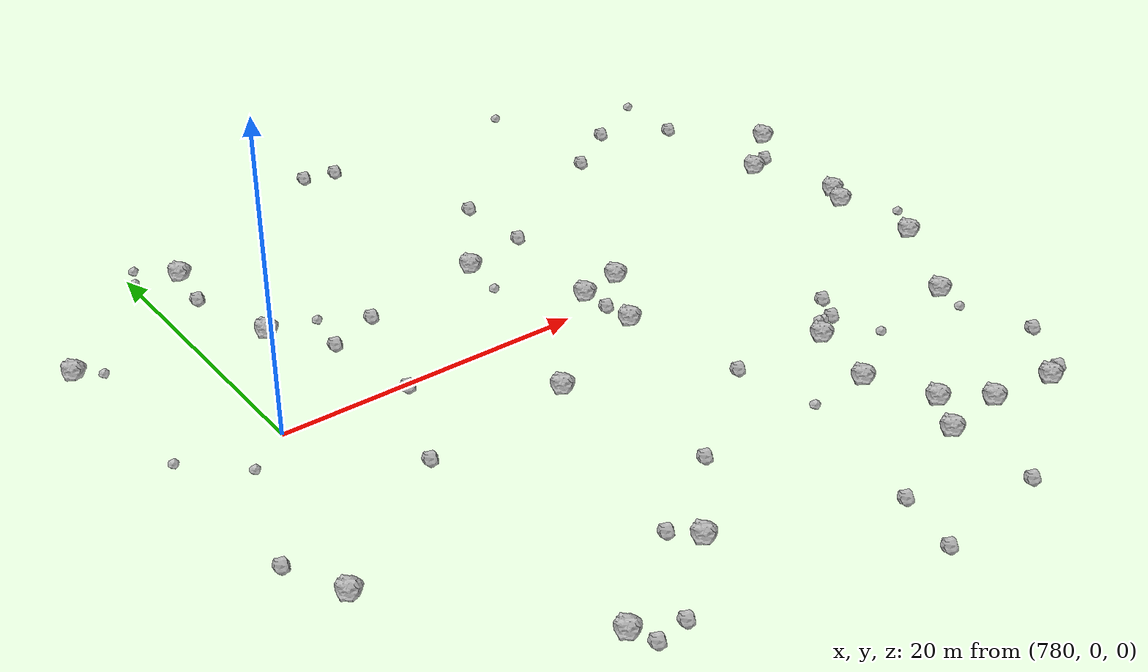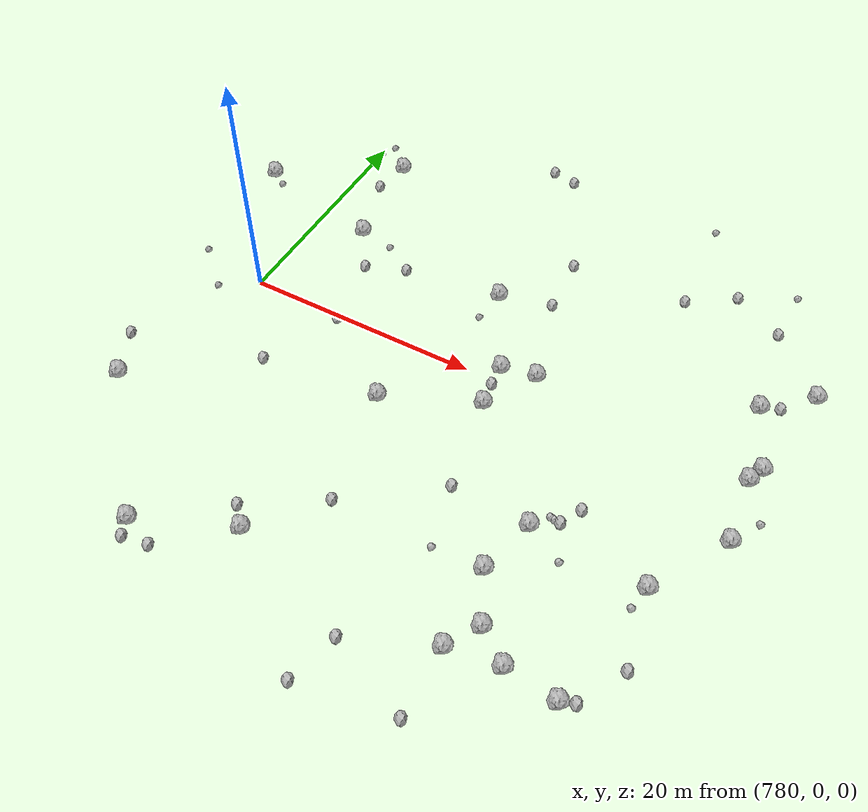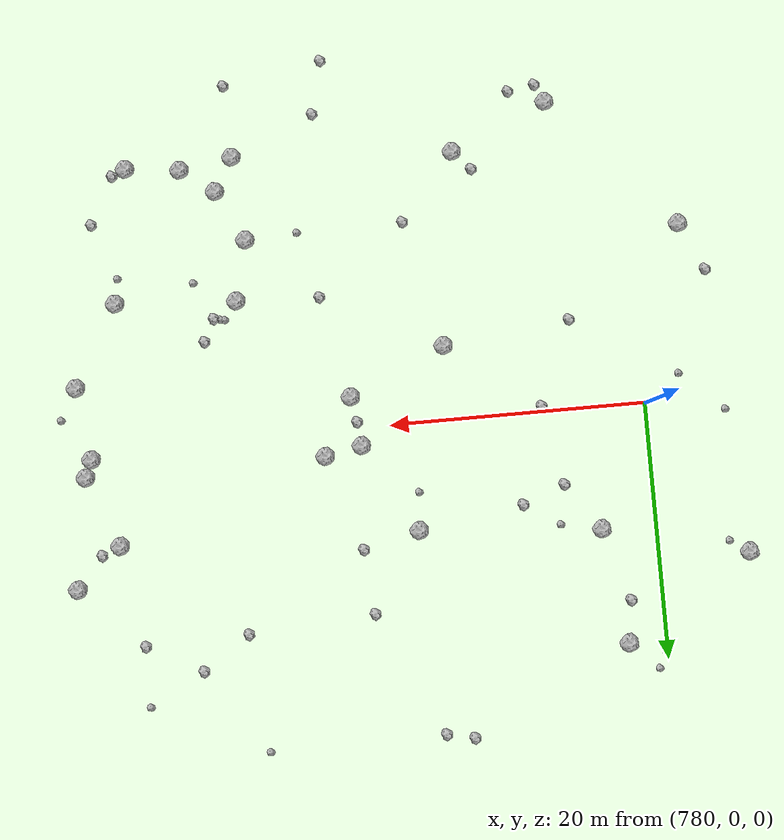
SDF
<sdf version="1.6">
 <world name="default">
  <include><uri>model://sun</uri></include>
  <model name="rock1_20_4">
   <include><uri>model://rock1</uri><pose>784.3052182169229 9.467289953736547 0.5 0 0 0</pose></include>
  </model>
  <model name="rock1_20_5">
   <include><uri>model://rock1</uri><pose>810.588748949477 -22.129869871737164 0.5 0 0 0</pose></include>
  </model>
  <model name="rock1_20_6">
   <include><uri>model://rock1</uri><pose>776.1507093755408 -13.852888620707038 0.5 0 0 0</pose></include>
  </model>
  <model name="rock1_20_7">
   <include><uri>model://rock1</uri><pose>823.4798243244823 0.5976586308515266 0.5 0 0 0</pose></include>
  </model>
  <model name="rock1_20_8">
   <include><uri>model://rock1</uri><pose>802.9013522329752 -2.5150596071014704 0.5 0 0 0</pose></include>
  </model>
  <model name="rock1_20_9">
   <include><uri>model://rock1</uri><pose>798.4806709004987 8.334273597344172 0.5 0 0 0</pose></include>
  </model>
  <model name="rock1_20_10">
   <include><uri>model://rock1</uri><pose>785.6932386244816 -24.349995489196818 0.5 0 0 0</pose></include>
  </model>
  <model name="rock1_20_11">
   <include><uri>model://rock1</uri><pose>805.2675124464951 1.9438262979342475 0.5 0 0 0</pose></include>
  </model>
  <model name="rock1_20_12">
   <include><uri>model://rock1</uri><pose>783.0045633660287 18.464682065296095 0.5 0 0 0</pose></include>
  </model>
  <model name="rock1_20_13">
   <include><uri>model://rock1</uri><pose>811.1751845977946 -10.796912418477522 0.5 0 0 0</pose></include>
  </model>
  <model name="rock1_20_14">
   <include><uri>model://rock1</uri><pose>825.3277606345067 10.589214560853932 0.5 0 0 0</pose></include>
  </model>
  <model name="rock1_20_15">
   <include><uri>model://rock1</uri><pose>821.7812291914529 7.501977702977015 0.5 0 0 0</pose></include>
  </model>
  <model name="rock1_20_16">
   <include><uri>model://rock1</uri><pose>818.9973366894653 -21.90865686054377 0.5 0 0 0</pose></include>
  </model>
  <model name="rock1_20_17">
   <include><uri>model://rock1</uri><pose>814.7410160796896 -21.461148429708985 0.5 0 0 0</pose></include>
  </model>
  <model name="rock1_20_18">
   <include><uri>model://rock1</uri><pose>820.6479559730027 -11.405347873802334 0.5 0 0 0</pose></include>
  </model>
  <model name="rock1_20_19">
   <include><uri>model://rock1</uri><pose>810.0578255893327 -15.513756210996872 0.5 0 0 0</pose></include>
  </model>
  <model name="rock1_20_20">
   <include><uri>model://rock1</uri><pose>824.0306236891904 1.955852144606709 0.5 0 0 0</pose></include>
  </model>
  <model name="rock1_20_21">
   <include><uri>model://rock1</uri><pose>795.3245039194885 -5.880466237889042 0.5 0 0 0</pose></include>
  </model>
  <model name="rock1_20_22">
   <include><uri>model://rock1</uri><pose>793.3019875982872 -21.047990669057377 0.5 0 0 0</pose></include>
  </model>
  <model name="rock1_20_23">
   <include><uri>model://rock1</uri><pose>824.2414894246648 -5.078897392023325 0.5 0 0 0</pose></include>
  </model>
  <model name="rock1_20_24">
   <include><uri>model://rock1</uri><pose>802.3877462721464 1.3526127228253806 0.5 0 0 0</pose></include>
  </model>
  <model name="rock1_20_25">
   <include><uri>model://rock1</uri><pose>812.1056012880488 -19.53825111933049 0.5 0 0 0</pose></include>
  </model>
  <model name="rock1_20_26">
   <include><uri>model://rock1</uri><pose>773.0102599876468 12.209313248213746 0.5 0 0 0</pose></include>
  </model>
  <model name="rock2_20_0">
   <include><uri>model://rock2</uri><pose>774.3237417976741 -10.051980186046094 0.3 0 0 0</pose></include>
  </model>
  <model name="rock2_20_1">
   <include><uri>model://rock2</uri><pose>820.0781170483224 -21.456550875105254 0.3 0 0 0</pose></include>
  </model>
  <model name="rock2_20_2">
   <include><uri>model://rock2</uri><pose>791.891462716145 -19.554504699769 0.3 0 0 0</pose></include>
  </model>
  <model name="rock2_20_3">
   <include><uri>model://rock2</uri><pose>816.0725462061024 17.790549932179843 0.3 0 0 0</pose></include>
  </model>
  <model name="rock2_20_4">
   <include><uri>model://rock2</uri><pose>810.7653722122789 -27.82753666771486 0.3 0 0 0</pose></include>
  </model>
  <model name="rock2_20_5">
   <include><uri>model://rock2</uri><pose>797.731971511639 24.28539087930784 0.3 0 0 0</pose></include>
  </model>
  <model name="rock2_20_6">
   <include><uri>model://rock2</uri><pose>786.8600773289054 5.786796132676166 0.3 0 0 0</pose></include>
  </model>
  <model name="rock2_20_7">
   <include><uri>model://rock2</uri><pose>802.5512185208287 -0.4973914737502483 0.3 0 0 0</pose></include>
  </model>
  <model name="rock2_20_8">
   <include><uri>model://rock2</uri><pose>782.503786662292 15.208488573615838 0.3 0 0 0</pose></include>
  </model>
  <model name="rock2_20_9">
   <include><uri>model://rock2</uri><pose>802.8836199831502 9.474302451939309 0.3 0 0 0</pose></include>
  </model>
  <model name="rock2_20_10">
   <include><uri>model://rock2</uri><pose>812.3562022005693 15.241201830708299 0.3 0 0 0</pose></include>
  </model>
  <model name="rock2_20_11">
   <include><uri>model://rock2</uri><pose>786.3337784547858 -25.762093952510753 0.3 0 0 0</pose></include>
  </model>
  <model name="rock2_20_12">
   <include><uri>model://rock2</uri><pose>790.1954899839977 7.0860950223635015 0.3 0 0 0</pose></include>
  </model>
  <model name="rock2_20_13">
   <include><uri>model://rock2</uri><pose>788.452651582123 -25.4125059388195 0.3 0 0 0</pose></include>
  </model>
  <model name="rock2_20_14">
   <include><uri>model://rock2</uri><pose>820.4275815117752 15.472477795026386 0.3 0 0 0</pose></include>
  </model>
  <model name="rock2_20_15">
   <include><uri>model://rock2</uri><pose>823.229445438694 8.14247623441809 0.3 0 0 0</pose></include>
  </model>
  <model name="rock2_20_16">
   <include><uri>model://rock2</uri><pose>802.9779561993619 -29.161592741312404 0.3 0 0 0</pose></include>
  </model>
  <model name="rock2_20_17">
   <include><uri>model://rock2</uri><pose>795.5628163300798 24.755711536574267 0.3 0 0 0</pose></include>
  </model>
  <model name="rock2_20_18">
   <include><uri>model://rock2</uri><pose>797.647587329779 -15.84144318116566 0.3 0 0 0</pose></include>
  </model>
  <model name="rock2_20_19">
   <include><uri>model://rock2</uri><pose>785.3289770206544 -7.047970243588136 0.3 0 0 0</pose></include>
  </model>
  <model name="rock2_20_20">
   <include><uri>model://rock2</uri><pose>813.0386474248539 -9.557480899646265 0.3 0 0 0</pose></include>
  </model>
  <model name="rock2_20_21">
   <include><uri>model://rock2</uri><pose>802.4282182778461 14.535029336715311 0.3 0 0 0</pose></include>
  </model>
  <model name="rock2_20_22">
   <include><uri>model://rock2</uri><pose>788.0708997767349 -0.4524582608827181 0.3 0 0 0</pose></include>
  </model>
  <model name="rock2_20_23">
   <include><uri>model://rock2</uri><pose>822.006906598392 -17.76391556998726 0.3 0 0 0</pose></include>
  </model>
  <model name="rock2_20_24">
   <include><uri>model://rock2</uri><pose>803.9814867923984 -24.992420384157235 0.3 0 0 0</pose></include>
  </model>
  <model name="rock2_20_25">
   <include><uri>model://rock2</uri><pose>813.9023909795179 -7.809626455900634 0.3 0 0 0</pose></include>
  </model>
  <model name="rock2_20_26">
   <include><uri>model://rock2</uri><pose>804.6436424489107 -10.518135817839742 0.3 0 0 0</pose></include>
  </model>
  <model name="rock3_20_0">
   <include><uri>model://rock3</uri><pose>780.757202924535 20.631260193811634 0.2 0 0 0</pose></include>
  </model>
  <model name="rock3_20_1">
   <include><uri>model://rock3</uri><pose>805.9531873936587 -15.795156499122754 0.2 0 0 0</pose></include>
  </model>
  <model name="rock3_20_2">
   <include><uri>model://rock3</uri><pose>820.282064609903 -13.395808994141614 0.2 0 0 0</pose></include>
  </model>
  <model name="rock3_20_3">
   <include><uri>model://rock3</uri><pose>814.3819021714573 -12.538508635074997 0.2 0 0 0</pose></include>
  </model>
  <model name="rock3_20_4">
   <include><uri>model://rock3</uri><pose>825.5757118996689 -2.6813790056554225 0.2 0 0 0</pose></include>
  </model>
  <model name="rock3_20_5">
   <include><uri>model://rock3</uri><pose>774.4068693186699 11.24122117401803 0.2 0 0 0</pose></include>
  </model>
  <model name="rock3_20_6">
   <include><uri>model://rock3</uri><pose>811.4422860821901 24.414816013805037 0.2 0 0 0</pose></include>
  </model>
  <model name="rock3_20_7">
   <include><uri>model://rock3</uri><pose>773.7661286011961 0.970947305187412 0.2 0 0 0</pose></include>
  </model>
  <model name="rock3_20_8">
   <include><uri>model://rock3</uri><pose>777.134855166474 -2.137450369930999 0.2 0 0 0</pose></include>
  </model>
  <model name="rock3_20_9">
   <include><uri>model://rock3</uri><pose>820.4156178745608 20.16222717014076 0.2 0 0 0</pose></include>
  </model>
  <model name="rock3_20_10">
   <include><uri>model://rock3</uri><pose>780.1876094886442 19.258980940459097 0.2 0 0 0</pose></include>
  </model>
  <model name="rock3_20_11">
   <include><uri>model://rock3</uri><pose>812.1612020274928 -9.428078365690144 0.2 0 0 0</pose></include>
  </model>
  <model name="rock3_20_12">
   <include><uri>model://rock3</uri><pose>787.3927782443753 8.836988196602917 0.2 0 0 0</pose></include>
  </model>
  <model name="rock3_20_13">
   <include><uri>model://rock3</uri><pose>798.1769215677517 5.352015282933841 0.2 0 0 0</pose></include>
  </model>
  <model name="rock3_20_14">
   <include><uri>model://rock3</uri><pose>812.4964530115494 -9.500541752592866 0.2 0 0 0</pose></include>
  </model>
 </world>
</sdf>
